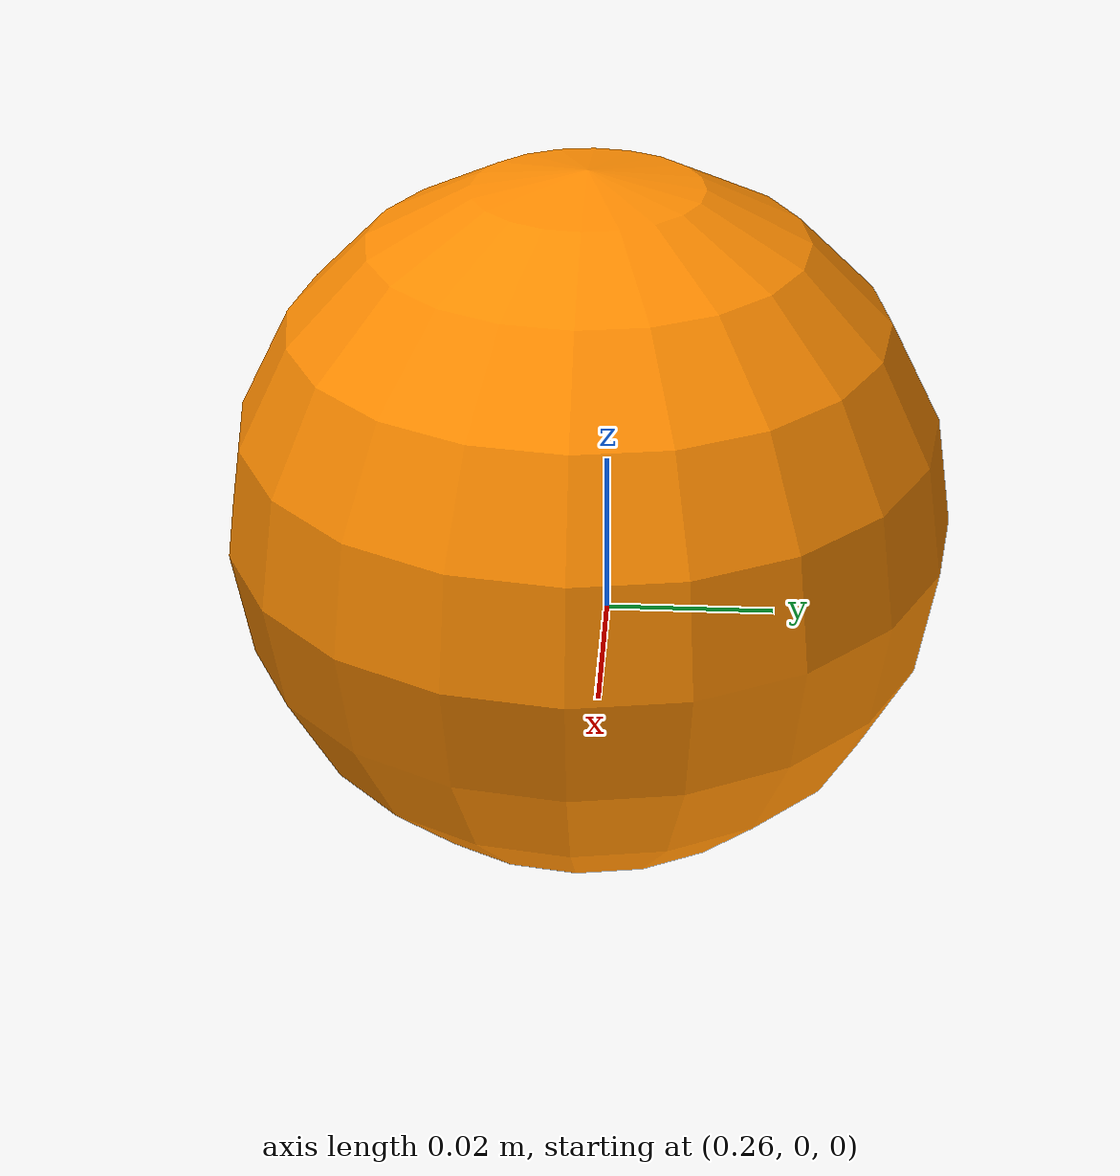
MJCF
<mujoco model="microduck_ball_rolling">
    <compiler angle="radian" autolimits="true"/>
    <worldbody>
        <body name="ball" pos="0.3 0 0.035">
            <freejoint name="ball_free"/>
            <inertial pos="0 0 0" mass="0.015" diaginertia="1.225e-5 1.225e-5 1.225e-5"/>
            <geom type="sphere" name="ball_geom" size="0.035" rgba="1 0.55 0 1"
                  condim="6" friction="0.5 0.005 0.002"/>
        </body>
    </worldbody>
</mujoco>
